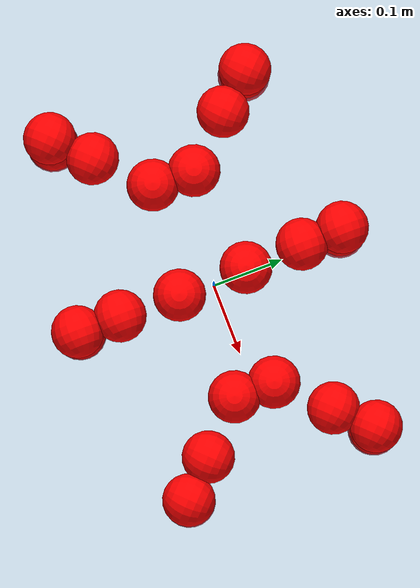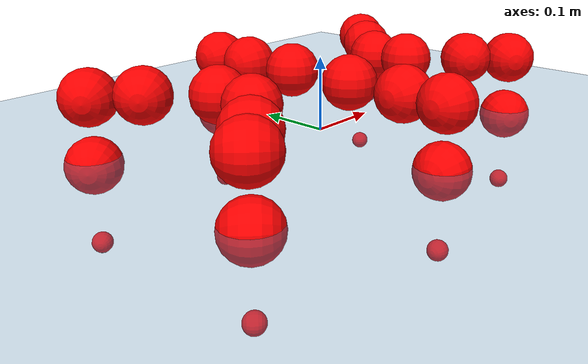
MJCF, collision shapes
<mujoco model="Golem">
  <compiler angle="radian" assetdir="assets" balanceinertia="true" inertiafromgeom="false"/>

  <option timestep="0.005" density="1.2" viscosity="2e-05"/>

  <size nkey="1"/>

  <visual>
    <quality shadowsize="8192"/>
    <map shadowclip="0.5"/>
  </visual>

  <default>
    <default class="/">
      <joint armature="0.01" damping="0.01" frictionloss="0.01"/>
      <geom contype="0" conaffinity="0" group="1" solref="-1000 -80"/>
      <site size="0.01 0.005 0.005" group="5"/>
      <general forcelimited="true" biastype="affine" gainprm="25" biasprm="0 -25 -0.5"/>
      <default class="visual">
        <geom type="mesh" group="2"/>
      </default>
      <default class="collision">
        <geom group="3"/>
      </default>
      <default class="foot">
        <geom size="0.01 0 0" condim="6" group="4" priority="1" solimp="0.015 1 0.01"/>
      </default>
      <default class="reward_collision_sphere">
        <geom group="5" rgba="1 0 0 1"/>
      </default>
    </default>
  </default>

  <asset>
    <texture type="skybox" colorspace="auto" name="//unnamed_texture_0" builtin="gradient" rgb1="0.95 0.95 0.95" rgb2="0.95 0.95 0.95" width="100" height="600"/>
    <texture type="2d" colorspace="auto" name="texplane" builtin="checker" rgb1="0.345 0.575 0.748" rgb2="0.345 0.575 0.748" markrgb="1 1 1" width="512" height="512"/>
    <material name="MatPlane" class="/" texture="texplane" texuniform="true" texrepeat="2 2" specular="0.9"/>
    <mesh name="body" class="/" file="body.stl" scale="0.001 0.001 0.001"/>
    <mesh name="coxa" class="/" file="coxa.stl" scale="0.001 0.001 0.001"/>
    <mesh name="femur" class="/" file="femur.stl" scale="0.001 0.001 0.001"/>
    <mesh name="tibia" class="/" file="tibia.stl" scale="0.001 0.001 0.001"/>
    <mesh name="tarsus" class="/" file="tarsus.stl" scale="0.001 0.001 0.001"/>
  </asset>

  <worldbody>
    <geom name="floor" class="/" size="100 100 0.125" type="plane" group="0" material="MatPlane"/>
    <light name="toplight_shadow" class="/" pos="0 0 5" dir="0.0990148 0.0990148 -0.990148" type="directional" ambient="0.04 0.04 0.04" diffuse="0.55 0.55 0.55" specular="0.12 0.12 0.12"/>
    <light name="toplight_fill" class="/" pos="0 0 5" dir="0.0990148 0.0990148 -0.990148" type="directional" castshadow="false" ambient="0.04 0.04 0.04" diffuse="0.3 0.3 0.3" specular="0.08 0.08 0.08"/>
    <body name="trunk" pos="0.000114914 -0.000311103 0.000855501" quat="1 -0.000376626 -9.01162e-05 0.000190711">
      <inertial pos="0.00149969 -0.00148314 -0.000927637" quat="0.999999 0.000576186 -0.000566323 0.00118954" mass="2.86157" diaginertia="0.00980147 0.000741197 0.0205183"/>
      <joint name="//unnamed_joint_0" type="free"/>
      <geom name="//unnamed_geom_1" class="/" pos="0 0 0.0733289" quat="1 0 0 0" type="mesh" rgba="0.9 0.9 0.9 1" mesh="body"/>
      <site name="imu" class="/" pos="0.130712 -0.000138673 0.103762" size="0.00906986"/>
      <camera name="track" class="/" pos="0 -1.18096 0" quat="0.707107 0.707107 0 0" mode="trackcom"/>
      <camera name="ego_camera" class="/" pos="0.128013 0 0.114576" quat="-0.5 -0.5 0.5 0.5"/>
      <body name="coxa_RR" pos="-0.17529 -0.0502936 0.0745482" quat="0.382728 -9.15262e-06 -1.71527e-05 -0.923861">
        <inertial pos="-0.000413104 0.000238332 0.000564152" quat="0.999999 0.000292512 -0.00115164 -0.000937291" mass="0.148723" diaginertia="0.00929032 0.000722934 0.019567"/>
        <joint name="coxa_joint_RR" class="/" pos="0 0 0" axis="-0.00700926 0.00579025 -0.999959" range="-3.14727 3.13851" armature="0.00900117" damping="0" frictionloss="0.00901378"/>
        <geom name="//unnamed_geom_2" class="/" type="mesh" rgba="0.2 0.2 0.2 1" mesh="coxa"/>
        <geom name="//unnamed_geom_3" class="reward_collision_sphere" size="0.0362794" pos="-0.0295415 0 0"/>
        <body name="femur_RR" pos="0.0605904 0.000406363 -4.25715e-05" quat="0.50003 -0.499944 0.500028 0.499998">
          <inertial pos="-0.000887013 -0.000442057 9.42292e-05" quat="1 -1.78869e-05 0.000130267 5.3918e-07" mass="0.146751" diaginertia="0.00930351 0.000700561 0.019224"/>
          <joint name="femur_joint_RR" class="/" pos="0 0 0" axis="-0.0109859 8.23857e-06 -0.99994" range="-3.14086 3.11795" armature="0.00906038" damping="0" frictionloss="0.0087325"/>
          <geom name="//unnamed_geom_4" class="/" type="mesh" rgba="0.9 0.9 0.9 1" mesh="femur"/>
          <geom name="//unnamed_geom_5" class="reward_collision_sphere" size="0.0362794"/>
          <body name="tibia_RR" pos="8.868e-05 -0.0650148 -0.00152038" quat="1.96109e-05 1 1.98568e-05 3.8517e-06">
            <inertial pos="-0.000493833 -0.00211719 0.000364567" quat="0.999932 -0.010506 -0.00498768 0.000880409" mass="0.149438" diaginertia="0.00944021 0.000719439 0.0195341"/>
            <joint name="tibia_joint_RR" class="/" pos="0 0 0" axis="0.00194296 0.00367744 0.999991" range="-3.12926 3.15612" armature="0.00916384" damping="0.00140124" frictionloss="0.00950997"/>
            <geom name="//unnamed_geom_6" class="/" type="mesh" rgba="0.2 0.2 0.2 1" mesh="tibia"/>
            <geom name="//unnamed_geom_7" class="reward_collision_sphere" size="0.0362794"/>
            <body name="tarsus_RR" pos="0.0841037 -0.00228736 -0.000583503" quat="1 -2.07631e-05 1.01705e-05 -8.79575e-05">
              <inertial pos="0.0591419 0.000833681 -0.00062521" quat="0.497909 0.495854 0.508426 0.497713" mass="0.152881" diaginertia="0.00938532 0.000723593 0.0194604"/>
              <joint name="tarsus_joint_RR" class="/" pos="0 0 0" axis="0.000126149 0.000172955 1" range="-3.14921 3.14276" armature="0.00951883" damping="0.00307063" frictionloss="0.00964911"/>
              <geom name="//unnamed_geom_8" class="/" type="mesh" rgba="0.9 0.9 0.9 1" mesh="tarsus"/>
              <geom name="foot_1" class="foot" size="0.00886819" pos="0.110288 0 0" quat="0 -0.707107 0 0.707107"/>
              <geom name="//unnamed_geom_10" class="reward_collision_sphere" size="0.0362794"/>
              <geom name="//unnamed_geom_11" class="reward_collision_sphere" size="0.0136048" pos="0.105857 0 0"/>
              <site name="foot_1" class="foot" pos="0.110288 0 0" quat="0 -0.707107 0 0.707107" size="0.00906986"/>
            </body>
          </body>
        </body>
      </body>
      <body name="coxa_RM" pos="-0.000886455 -0.0792743 0.0737949" quat="0.706769 -0.000981489 -7.97154e-05 -0.707444">
        <inertial pos="0.00100124 -0.000151781 -0.00125719" quat="1 -0.000247425 -0.000547465 -0.00012135" mass="0.151137" diaginertia="0.0093291 0.00073165 0.0196267"/>
        <joint name="coxa_joint_RM" class="/" pos="0 0 0" axis="0.000224642 0.000403098 -1" range="-3.12798 3.1419" armature="0.00949781" damping="0.0157817" frictionloss="0.00861885"/>
        <geom name="//unnamed_geom_12" class="/" type="mesh" rgba="0.2 0.2 0.2 1" mesh="coxa"/>
        <geom name="//unnamed_geom_13" class="reward_collision_sphere" size="0.0362794" pos="-0.0295415 0 0"/>
        <body name="femur_RM" pos="0.056266 -0.00250663 0.00107246" quat="0.499818 -0.500077 0.500059 0.500046">
          <inertial pos="0.00223133 -0.000392144 -0.000380926" quat="0.999987 0.00165848 0.00193977 0.00447184" mass="0.145212" diaginertia="0.00879737 0.000700817 0.0186903"/>
          <joint name="femur_joint_RM" class="/" pos="0 0 0" axis="0.00284611 -0.00178553 -0.999994" range="-3.14097 3.09701" armature="0.00866578" damping="0.0116783" frictionloss="0.00918759"/>
          <geom name="//unnamed_geom_14" class="/" type="mesh" rgba="0.9 0.9 0.9 1" mesh="femur"/>
          <geom name="//unnamed_geom_15" class="reward_collision_sphere" size="0.0362794"/>
          <body name="tibia_RM" pos="0.000339551 -0.0617203 -0.000632488" quat="3.31949e-05 1 -4.31501e-06 3.64233e-05">
            <inertial pos="-0.000169667 0.00263482 0.000628462" quat="1 -3.618e-05 -6.45786e-05 -0.00032847" mass="0.148451" diaginertia="0.00925296 0.000716198 0.0196522"/>
            <joint name="tibia_joint_RM" class="/" pos="0 0 0" axis="6.91083e-06 -3.86738e-05 1" range="-3.13386 3.14467" armature="0.00953866" damping="0.0189172" frictionloss="0.00912728"/>
            <geom name="//unnamed_geom_16" class="/" type="mesh" rgba="0.2 0.2 0.2 1" mesh="tibia"/>
            <geom name="//unnamed_geom_17" class="reward_collision_sphere" size="0.0362794"/>
            <body name="tarsus_RM" pos="0.0840157 -0.0014587 0.000712755" quat="1 1.0041e-05 5.774e-06 -9.78915e-06">
              <inertial pos="0.0608225 -0.000248206 -0.000805381" quat="0.499053 0.500833 0.499592 0.50052" mass="0.154023" diaginertia="0.00925033 0.000719837 0.0203267"/>
              <joint name="tarsus_joint_RM" class="/" pos="0 0 0" axis="0.00511725 0.00255363 0.999984" stiffness="0.00163843" range="-3.16264 3.10816" armature="0.00906616" damping="0.0077918" frictionloss="0.00854182"/>
              <geom name="//unnamed_geom_18" class="/" type="mesh" rgba="0.9 0.9 0.9 1" mesh="tarsus"/>
              <geom name="foot_2" class="foot" size="0.0092798" pos="0.110288 0 0" quat="0 -0.707107 0 0.707107"/>
              <geom name="//unnamed_geom_20" class="reward_collision_sphere" size="0.0362794"/>
              <geom name="//unnamed_geom_21" class="reward_collision_sphere" size="0.0136048" pos="0.105857 0 0"/>
              <site name="foot_2" class="foot" pos="0.110288 0 0" quat="0 -0.707107 0 0.707107" size="0.00906986"/>
            </body>
          </body>
        </body>
      </body>
      <body name="coxa_RF" pos="0.176414 -0.0507402 0.0756516" quat="0.924011 -7.60427e-05 0.000154358 -0.382365">
        <inertial pos="0.000917339 -0.00220635 0.00138618" quat="0.999945 0.000857462 0.00476897 -0.00926492" mass="0.145186" diaginertia="0.00927839 0.000710331 0.019528"/>
        <joint name="coxa_joint_RF" class="/" pos="0 0 0" axis="-0.00363551 -0.000248513 -0.999993" range="-3.09401 3.1307" armature="0.00838185" damping="0" frictionloss="0.00906496"/>
        <geom name="//unnamed_geom_22" class="/" type="mesh" rgba="0.2 0.2 0.2 1" mesh="coxa"/>
        <geom name="//unnamed_geom_23" class="reward_collision_sphere" size="0.0362794" pos="-0.0295415 0 0"/>
        <body name="femur_RF" pos="0.0597315 0.000627999 -0.000704003" quat="0.50001 -0.499957 0.50006 0.499973">
          <inertial pos="-0.000842394 0.0019824 0.000412179" quat="0.999988 -0.000549527 0.00294728 0.00399167" mass="0.14968" diaginertia="0.00960624 0.000735999 0.0205912"/>
          <joint name="femur_joint_RF" class="/" pos="0 0 0" axis="-0.000945594 -0.000995209 -0.999999" range="-3.14972 3.14893" armature="0.00912681" damping="0.00871031" frictionloss="0.00932322"/>
          <geom name="//unnamed_geom_24" class="/" type="mesh" rgba="0.9 0.9 0.9 1" mesh="femur"/>
          <geom name="//unnamed_geom_25" class="reward_collision_sphere" size="0.0362794"/>
          <body name="tibia_RF" pos="0.000734598 -0.0640387 -0.00062981" quat="-5.15286e-05 1 -9.63881e-05 -0.000187078">
            <inertial pos="0.000280819 0.000175102 -0.00245202" quat="0.999961 0.00841271 0.00263641 -0.000301765" mass="0.152067" diaginertia="0.00947715 0.000708485 0.0203256"/>
            <joint name="tibia_joint_RF" class="/" pos="0 0 0" axis="-0.00106944 0.0056927 0.999983" stiffness="0.000383811" range="-3.14105 3.13314" armature="0.00892832" damping="0.0122488" frictionloss="0.00900738"/>
            <geom name="//unnamed_geom_26" class="/" type="mesh" rgba="0.2 0.2 0.2 1" mesh="tibia"/>
            <geom name="//unnamed_geom_27" class="reward_collision_sphere" size="0.0362794"/>
            <body name="tarsus_RF" pos="0.0869822 0.00105887 -0.000965624" quat="1 -0.000270154 -0.000443402 -0.000190887">
              <inertial pos="0.0596227 -0.000411226 -0.0009166" quat="0.499888 0.499822 0.500435 0.499855" mass="0.149731" diaginertia="0.00938784 0.000700974 0.0191837"/>
              <joint name="tarsus_joint_RF" class="/" pos="0 0 0" axis="3.25434e-06 0.000364226 1" stiffness="0.0239067" range="-3.11513 3.13643" armature="0.00871035" damping="0" frictionloss="0.00890852"/>
              <geom name="//unnamed_geom_28" class="/" type="mesh" rgba="0.9 0.9 0.9 1" mesh="tarsus"/>
              <geom name="foot_3" class="foot" size="0.0094062" pos="0.110288 0 0" quat="0 -0.707107 0 0.707107"/>
              <geom name="//unnamed_geom_30" class="reward_collision_sphere" size="0.0362794"/>
              <geom name="//unnamed_geom_31" class="reward_collision_sphere" size="0.0136048" pos="0.105857 0 0"/>
              <site name="foot_3" class="foot" pos="0.110288 0 0" quat="0 -0.707107 0 0.707107" size="0.00906986"/>
            </body>
          </body>
        </body>
      </body>
      <body name="coxa_LR" pos="-0.173462 0.0509269 0.0751968" quat="0.382974 0.000188173 7.18605e-05 0.923759">
        <inertial pos="-0.000648152 -0.00166101 -0.0004484" quat="0.999985 -0.00427857 0.00262093 -0.00225771" mass="0.147138" diaginertia="0.00943731 0.000701702 0.0189259"/>
        <joint name="coxa_joint_LR" class="/" pos="0 0 0" axis="-0.00082098 -0.00268532 -0.999996" range="-3.13625 3.12521" armature="0.008663" damping="0.0142749" frictionloss="0.00929518"/>
        <geom name="//unnamed_geom_32" class="/" type="mesh" rgba="0.2 0.2 0.2 1" mesh="coxa"/>
        <geom name="//unnamed_geom_33" class="reward_collision_sphere" size="0.0362794" pos="-0.0295415 0 0"/>
        <body name="femur_LR" pos="0.060664 -0.00330873 -6.13843e-05" quat="0.500068 -0.500582 0.499764 0.499585">
          <inertial pos="0.000183277 -0.00265801 -0.000147777" quat="1 -0.000140017 0.000562364 -0.000189041" mass="0.149794" diaginertia="0.00900754 0.000724834 0.0191822"/>
          <joint name="femur_joint_LR" class="/" pos="0 0 0" axis="0.00178526 -8.23259e-05 0.999998" range="-3.10135 3.13383" armature="0.00890827" damping="0" frictionloss="0.00911167"/>
          <geom name="//unnamed_geom_34" class="/" type="mesh" rgba="0.9 0.9 0.9 1" mesh="femur"/>
          <geom name="//unnamed_geom_35" class="reward_collision_sphere" size="0.0362794"/>
          <body name="tibia_LR" pos="0.00224112 -0.0656309 -0.00367965" quat="7.01356e-05 1 3.03038e-05 2.57968e-05">
            <inertial pos="-0.000302583 -0.00129418 0.000698912" quat="0.999961 0.00034864 0.00458563 0.00756263" mass="0.148224" diaginertia="0.00901777 0.000711083 0.0195516"/>
            <joint name="tibia_joint_LR" class="/" pos="0 0 0" axis="-0.00187411 0.0023666 -0.999995" range="-3.14382 3.17974" armature="0.00858655" damping="0" frictionloss="0.00912642"/>
            <geom name="//unnamed_geom_36" class="/" type="mesh" rgba="0.2 0.2 0.2 1" mesh="tibia"/>
            <geom name="//unnamed_geom_37" class="reward_collision_sphere" size="0.0362794"/>
            <body name="tarsus_LR" pos="0.0867626 0.00103355 -0.00157169" quat="1 9.22602e-05 2.78457e-05 0.000371533">
              <inertial pos="0.0619433 -0.00193339 -0.00177519" quat="0.501023 0.503115 0.498256 0.497586" mass="0.149028" diaginertia="0.00912428 0.000718226 0.0191993"/>
              <joint name="tarsus_joint_LR" class="/" pos="0 0 0" axis="0.0133178 0.000519339 -0.999911" range="-3.12231 3.13721" armature="0.0086678" damping="0" frictionloss="0.00904283"/>
              <geom name="//unnamed_geom_38" class="/" type="mesh" rgba="0.9 0.9 0.9 1" mesh="tarsus"/>
              <geom name="foot_4" class="foot" size="0.00993112" pos="0.110288 0 0" quat="0.707107 0 -0.707107 0"/>
              <geom name="//unnamed_geom_40" class="reward_collision_sphere" size="0.0362794"/>
              <geom name="//unnamed_geom_41" class="reward_collision_sphere" size="0.0136048" pos="0.105857 0 0"/>
              <site name="foot_4" class="foot" pos="0.110288 0 0" quat="0.707107 0 -0.707107 0" size="0.00906986"/>
            </body>
          </body>
        </body>
      </body>
      <body name="coxa_LM" pos="-0.00331454 0.0779301 0.0751314" quat="0.706984 9.24122e-05 -0.000360715 0.707229">
        <inertial pos="0.00124649 -0.000883077 -0.000712465" quat="0.999959 -0.00339462 -0.00627106 0.00557063" mass="0.150988" diaginertia="0.00941342 0.000740826 0.0203923"/>
        <joint name="coxa_joint_LM" class="/" pos="0 0 0" axis="0.0116028 0.00526363 -0.999919" range="-3.13588 3.12312" armature="0.00859947" damping="0.00466501" frictionloss="0.00913779"/>
        <geom name="//unnamed_geom_42" class="/" type="mesh" rgba="0.2 0.2 0.2 1" mesh="coxa"/>
        <geom name="//unnamed_geom_43" class="reward_collision_sphere" size="0.0362794" pos="-0.0295415 0 0"/>
        <body name="femur_LM" pos="0.0532588 0.00231848 -0.000752046" quat="0.499999 -0.500001 0.5 0.500001">
          <inertial pos="0.000648454 0.000111229 0.000996808" quat="0.999985 0.00311946 0.00104871 0.00429787" mass="0.149825" diaginertia="0.00915388 0.000749086 0.0202843"/>
          <joint name="femur_joint_LM" class="/" pos="0 0 0" axis="0.00205975 -0.000671342 0.999998" range="-3.1595 3.15002" armature="0.00920827" damping="8.72134e-05" frictionloss="0.00877024"/>
          <geom name="//unnamed_geom_44" class="/" type="mesh" rgba="0.9 0.9 0.9 1" mesh="femur"/>
          <geom name="//unnamed_geom_45" class="reward_collision_sphere" size="0.0362794"/>
          <body name="tibia_LM" pos="0.000107905 -0.0597799 0.00173646" quat="-0.000119318 1 -0.000548467 0.0004324">
            <inertial pos="9.44876e-05 -0.000734269 -0.00173121" quat="0.999952 0.00968562 -0.00132524 0.000763225" mass="0.148378" diaginertia="0.00922387 0.00073971 0.0199902"/>
            <joint name="tibia_joint_LM" class="/" pos="0 0 0" axis="0.00107284 3.15067e-06 -0.999999" range="-3.13735 3.13944" armature="0.009119" damping="0" frictionloss="0.00844173"/>
            <geom name="//unnamed_geom_46" class="/" type="mesh" rgba="0.2 0.2 0.2 1" mesh="tibia"/>
            <geom name="//unnamed_geom_47" class="reward_collision_sphere" size="0.0362794"/>
            <body name="tarsus_LM" pos="0.0868502 -0.000685346 -0.000486614" quat="1 -0.000178052 0.000383044 0.00061082">
              <inertial pos="0.0597557 -0.000839528 -0.000238314" quat="0.50307 0.491356 0.503455 0.502019" mass="0.151769" diaginertia="0.00949116 0.000722409 0.0196316"/>
              <joint name="tarsus_joint_LM" class="/" pos="0 0 0" axis="-0.00858984 0.00449043 -0.999953" range="-3.12894 3.12786" armature="0.00887864" damping="0" frictionloss="0.00994844"/>
              <geom name="//unnamed_geom_48" class="/" type="mesh" rgba="0.9 0.9 0.9 1" mesh="tarsus"/>
              <geom name="foot_5" class="foot" size="0.00897529" pos="0.110288 0 0" quat="0.707107 0 -0.707107 0"/>
              <geom name="//unnamed_geom_50" class="reward_collision_sphere" size="0.0362794"/>
              <geom name="//unnamed_geom_51" class="reward_collision_sphere" size="0.0136048" pos="0.105857 0 0"/>
              <site name="foot_5" class="foot" pos="0.110288 0 0" quat="0.707107 0 -0.707107 0" size="0.00906986"/>
            </body>
          </body>
        </body>
      </body>
      <body name="coxa_LF" pos="0.177071 0.0484764 0.0724021" quat="0.923832 0.000142383 -5.69835e-05 0.382798">
        <inertial pos="-0.000414244 0.000208133 0.00185107" quat="0.999987 0.00421948 -0.00254938 -0.00110124" mass="0.14804" diaginertia="0.00898692 0.000732908 0.0195454"/>
        <joint name="coxa_joint_LF" class="/" pos="0 0 0" axis="0.00549801 0.0107869 -0.999927" range="-3.13608 3.13447" armature="0.00841688" damping="0.00136489" frictionloss="0.0101987"/>
        <geom name="//unnamed_geom_52" class="/" type="mesh" rgba="0.2 0.2 0.2 1" mesh="coxa"/>
        <geom name="//unnamed_geom_53" class="reward_collision_sphere" size="0.0362794" pos="-0.0295415 0 0"/>
        <body name="femur_LF" pos="0.0587354 0.000656838 0.000400589" quat="0.500023 -0.500052 0.499978 0.499948">
          <inertial pos="-0.00250195 0.000579459 0.00247487" quat="0.999996 0.00254493 -0.000792395 0.000664679" mass="0.151061" diaginertia="0.00954105 0.000723912 0.0198102"/>
          <joint name="femur_joint_LF" class="/" pos="0 0 0" axis="-0.00280494 -0.0035006 0.99999" range="-3.13294 3.12943" armature="0.00918361" damping="0" frictionloss="0.00870532"/>
          <geom name="//unnamed_geom_54" class="/" type="mesh" rgba="0.9 0.9 0.9 1" mesh="femur"/>
          <geom name="//unnamed_geom_55" class="reward_collision_sphere" size="0.0362794"/>
          <body name="tibia_LF" pos="-0.000630138 -0.0631069 0.000743556" quat="9.67041e-06 1 -2.41478e-05 2.23042e-06">
            <inertial pos="0.000785419 -0.00227934 -0.000336507" quat="1 5.94141e-06 1.09923e-05 4.79667e-06" mass="0.142846" diaginertia="0.0087037 0.000694315 0.0188788"/>
            <joint name="tibia_joint_LF" class="/" pos="0 0 0" axis="-0.00287394 -0.00517574 -0.999982" range="-3.13491 3.14471" armature="0.00941121" damping="0" frictionloss="0.00904472"/>
            <geom name="//unnamed_geom_56" class="/" type="mesh" rgba="0.2 0.2 0.2 1" mesh="tibia"/>
            <geom name="//unnamed_geom_57" class="reward_collision_sphere" size="0.0362794"/>
            <body name="tarsus_LF" pos="0.0848577 0.000968281 0.0017076" quat="1 -4.85896e-05 -5.12667e-05 -2.04893e-06">
              <inertial pos="0.0591774 0.00043541 2.97515e-05" quat="0.499178 0.5005 0.499134 0.501185" mass="0.142561" diaginertia="0.00886811 0.000683929 0.0189522"/>
              <joint name="tarsus_joint_LF" class="/" pos="0 0 0" axis="0.00294393 -0.00295611 -0.999991" stiffness="0.000285093" range="-3.1498 3.13552" armature="0.00969916" damping="0.0135077" frictionloss="0.00798674"/>
              <geom name="//unnamed_geom_58" class="/" type="mesh" rgba="0.9 0.9 0.9 1" mesh="tarsus"/>
              <geom name="foot_6" class="foot" size="0.00867429" pos="0.110288 0 0" quat="0.707107 0 -0.707107 0"/>
              <geom name="//unnamed_geom_60" class="reward_collision_sphere" size="0.0362794"/>
              <geom name="//unnamed_geom_61" class="reward_collision_sphere" size="0.0136048" pos="0.105857 0 0"/>
              <site name="foot_6" class="foot" pos="0.110288 0 0" quat="0.707107 0 -0.707107 0" size="0.00906986"/>
            </body>
          </body>
        </body>
      </body>
    </body>
  </worldbody>

  <contact>
    <pair class="/" geom1="floor" geom2="foot_1" name="//unnamed_contact_0"/>
    <pair class="/" geom1="floor" geom2="foot_2" name="//unnamed_contact_1"/>
    <pair class="/" geom1="floor" geom2="foot_3" name="//unnamed_contact_2"/>
    <pair class="/" geom1="floor" geom2="foot_4" name="//unnamed_contact_3"/>
    <pair class="/" geom1="floor" geom2="foot_5" name="//unnamed_contact_4"/>
    <pair class="/" geom1="floor" geom2="foot_6" name="//unnamed_contact_5"/>
  </contact>

  <actuator>
    <general name="coxa_joint_RR" class="/" joint="coxa_joint_RR" forcerange="-6.87484 6.87484" gainprm="22.4758" biasprm="0 -22.4758 -0.48796"/>
    <general name="femur_joint_RR" class="/" joint="femur_joint_RR" forcerange="-6.50143 6.50143" gainprm="22.4758" biasprm="0 -22.4758 -0.48796"/>
    <general name="tibia_joint_RR" class="/" joint="tibia_joint_RR" forcerange="-6.86997 6.86997" gainprm="22.4758" biasprm="0 -22.4758 -0.48796"/>
    <general name="tarsus_joint_RR" class="/" joint="tarsus_joint_RR" forcerange="-7.07891 7.07891" gainprm="22.4758" biasprm="0 -22.4758 -0.48796"/>
    <general name="coxa_joint_RM" class="/" joint="coxa_joint_RM" forcerange="-6.73199 6.73199" gainprm="22.4758" biasprm="0 -22.4758 -0.48796"/>
    <general name="femur_joint_RM" class="/" joint="femur_joint_RM" forcerange="-6.64582 6.64582" gainprm="22.4758" biasprm="0 -22.4758 -0.48796"/>
    <general name="tibia_joint_RM" class="/" joint="tibia_joint_RM" forcerange="-6.56656 6.56656" gainprm="22.4758" biasprm="0 -22.4758 -0.48796"/>
    <general name="tarsus_joint_RM" class="/" joint="tarsus_joint_RM" forcerange="-7.19523 7.19523" gainprm="22.4758" biasprm="0 -22.4758 -0.48796"/>
    <general name="coxa_joint_RF" class="/" joint="coxa_joint_RF" forcerange="-6.55516 6.55516" gainprm="22.4758" biasprm="0 -22.4758 -0.48796"/>
    <general name="femur_joint_RF" class="/" joint="femur_joint_RF" forcerange="-6.08202 6.08202" gainprm="22.4758" biasprm="0 -22.4758 -0.48796"/>
    <general name="tibia_joint_RF" class="/" joint="tibia_joint_RF" forcerange="-6.71509 6.71509" gainprm="22.4758" biasprm="0 -22.4758 -0.48796"/>
    <general name="tarsus_joint_RF" class="/" joint="tarsus_joint_RF" forcerange="-6.45469 6.45469" gainprm="22.4758" biasprm="0 -22.4758 -0.48796"/>
    <general name="coxa_joint_LR" class="/" joint="coxa_joint_LR" forcerange="-6.60958 6.60958" gainprm="22.4758" biasprm="0 -22.4758 -0.48796"/>
    <general name="femur_joint_LR" class="/" joint="femur_joint_LR" forcerange="-6.67589 6.67589" gainprm="22.4758" biasprm="0 -22.4758 -0.48796"/>
    <general name="tibia_joint_LR" class="/" joint="tibia_joint_LR" forcerange="-6.61149 6.61149" gainprm="22.4758" biasprm="0 -22.4758 -0.48796"/>
    <general name="tarsus_joint_LR" class="/" joint="tarsus_joint_LR" forcerange="-6.60142 6.60142" gainprm="22.4758" biasprm="0 -22.4758 -0.48796"/>
    <general name="coxa_joint_LM" class="/" joint="coxa_joint_LM" forcerange="-6.69015 6.69015" gainprm="22.4758" biasprm="0 -22.4758 -0.48796"/>
    <general name="femur_joint_LM" class="/" joint="femur_joint_LM" forcerange="-6.53254 6.53254" gainprm="22.4758" biasprm="0 -22.4758 -0.48796"/>
    <general name="tibia_joint_LM" class="/" joint="tibia_joint_LM" forcerange="-6.86076 6.86076" gainprm="22.4758" biasprm="0 -22.4758 -0.48796"/>
    <general name="tarsus_joint_LM" class="/" joint="tarsus_joint_LM" forcerange="-6.75195 6.75195" gainprm="22.4758" biasprm="0 -22.4758 -0.48796"/>
    <general name="coxa_joint_LF" class="/" joint="coxa_joint_LF" forcerange="-6.18029 6.18029" gainprm="22.4758" biasprm="0 -22.4758 -0.48796"/>
    <general name="femur_joint_LF" class="/" joint="femur_joint_LF" forcerange="-6.60426 6.60426" gainprm="22.4758" biasprm="0 -22.4758 -0.48796"/>
    <general name="tibia_joint_LF" class="/" joint="tibia_joint_LF" forcerange="-6.62903 6.62903" gainprm="22.4758" biasprm="0 -22.4758 -0.48796"/>
    <general name="tarsus_joint_LF" class="/" joint="tarsus_joint_LF" forcerange="-6.87371 6.87371" gainprm="22.4758" biasprm="0 -22.4758 -0.48796"/>
  </actuator>

  <sensor>
    <gyro site="imu" name="imu_angular_velocity"/>
    <velocimeter site="imu" name="imu_linear_velocity"/>
    <framelinvel objtype="site" objname="foot_1" name="foot_1_global_linear_velocity"/>
    <framelinvel objtype="site" objname="foot_2" name="foot_2_global_linear_velocity"/>
    <framelinvel objtype="site" objname="foot_3" name="foot_3_global_linear_velocity"/>
    <framelinvel objtype="site" objname="foot_4" name="foot_4_global_linear_velocity"/>
    <framelinvel objtype="site" objname="foot_5" name="foot_5_global_linear_velocity"/>
    <framelinvel objtype="site" objname="foot_6" name="foot_6_global_linear_velocity"/>
  </sensor>

  <keyframe>
    <key name="home" qpos="0 0 0.1457 1 0 0 0 0 0 0 0 0 0 0 0 0 0 0 0 0 0 0 0 0 0 0 0 0 0 0 0"/>
  </keyframe>
</mujoco>
